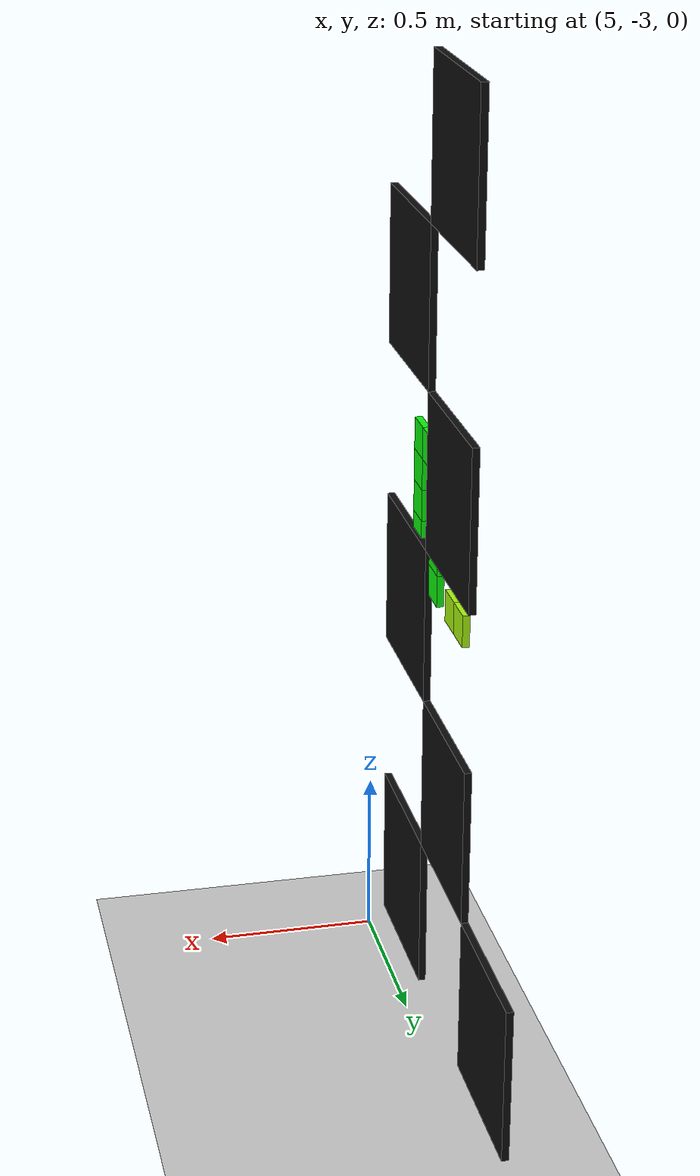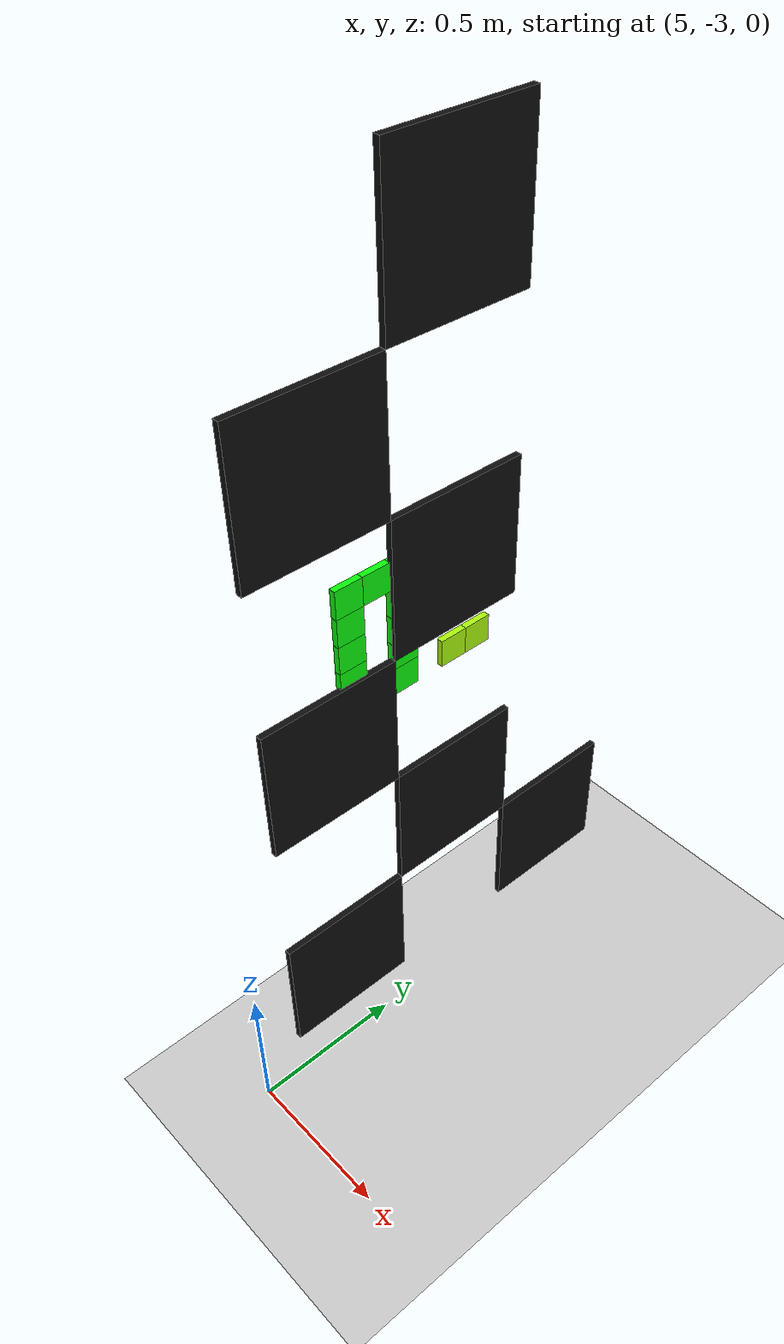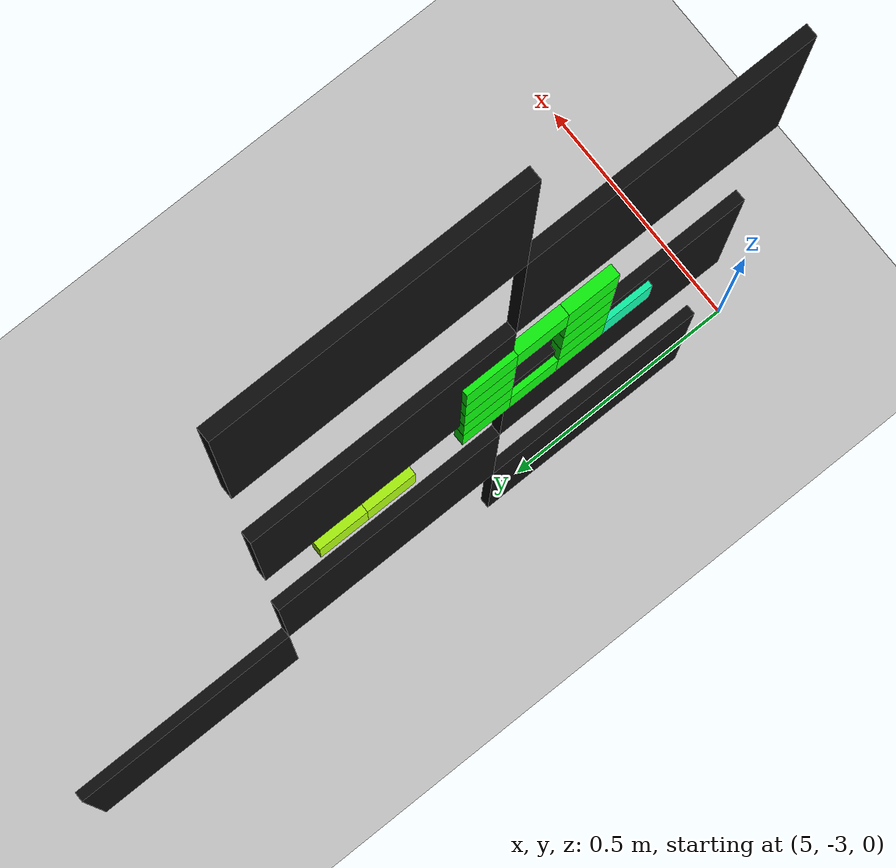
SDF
<sdf version="1.6">
 <world name="collab_workshop">
  <include><uri>model://ground_plane</uri></include>
  <include><uri>model://sun</uri></include>
  <model name="east_a_tile_0_3">
   <pose>4.98 -2.625 0.3749999999999999 0 0 0.0</pose>
   <static>true</static>
   <link name="link">
    <visual name="visual">
     <geometry><box><size>0.02 0.45 0.45</size></box></geometry>
     <material><ambient>0.05 0.05 0.05 1</ambient><diffuse>0.05 0.05 0.05 1</diffuse></material>
    </visual>
   </link>
  </model>
  <model name="east_a_tile_0_5">
   <pose>4.98 -1.725 0.3749999999999999 0 0 0.0</pose>
   <static>true</static>
   <link name="link">
    <visual name="visual">
     <geometry><box><size>0.02 0.45 0.45</size></box></geometry>
     <material><ambient>0.05 0.05 0.05 1</ambient><diffuse>0.05 0.05 0.05 1</diffuse></material>
    </visual>
   </link>
  </model>
  <model name="east_a_tile_1_4">
   <pose>4.98 -2.1750000000000003 0.8249999999999998 0 0 0.0</pose>
   <static>true</static>
   <link name="link">
    <visual name="visual">
     <geometry><box><size>0.02 0.45 0.45</size></box></geometry>
     <material><ambient>0.05 0.05 0.05 1</ambient><diffuse>0.05 0.05 0.05 1</diffuse></material>
    </visual>
   </link>
  </model>
  <model name="east_a_tile_2_3">
   <pose>4.98 -2.625 1.275 0 0 0.0</pose>
   <static>true</static>
   <link name="link">
    <visual name="visual">
     <geometry><box><size>0.02 0.45 0.45</size></box></geometry>
     <material><ambient>0.05 0.05 0.05 1</ambient><diffuse>0.05 0.05 0.05 1</diffuse></material>
    </visual>
   </link>
  </model>
  <model name="east_a_tile_3_4">
   <pose>4.98 -2.1750000000000003 1.725 0 0 0.0</pose>
   <static>true</static>
   <link name="link">
    <visual name="visual">
     <geometry><box><size>0.02 0.45 0.45</size></box></geometry>
     <material><ambient>0.05 0.05 0.05 1</ambient><diffuse>0.05 0.05 0.05 1</diffuse></material>
    </visual>
   </link>
  </model>
  <model name="east_a_tile_4_3">
   <pose>4.98 -2.625 2.175 0 0 0.0</pose>
   <static>true</static>
   <link name="link">
    <visual name="visual">
     <geometry><box><size>0.02 0.45 0.45</size></box></geometry>
     <material><ambient>0.05 0.05 0.05 1</ambient><diffuse>0.05 0.05 0.05 1</diffuse></material>
    </visual>
   </link>
  </model>
  <model name="east_a_tile_5_4">
   <pose>4.98 -2.1750000000000003 2.625 0 0 0.0</pose>
   <static>true</static>
   <link name="link">
    <visual name="visual">
     <geometry><box><size>0.02 0.45 0.45</size></box></geometry>
     <material><ambient>0.05 0.05 0.05 1</ambient><diffuse>0.05 0.05 0.05 1</diffuse></material>
    </visual>
   </link>
  </model>
  <model name="lab_letter_2_4_0">
   <pose>4.97 -2.0850000000000004 1.415 0 0 0.0</pose>
   <static>true</static>
   <link name="link">
    <visual name="visual">
     <geometry><box><size>0.02 0.09 0.09</size></box></geometry>
     <material><ambient>0.67 0.98 0.049 1</ambient><diffuse>0.67 0.98 0.049 1</diffuse></material>
    </visual>
   </link>
  </model>
  <model name="lab_letter_2_4_1">
   <pose>4.97 -2.1750000000000003 1.415 0 0 0.0</pose>
   <static>true</static>
   <link name="link">
    <visual name="visual">
     <geometry><box><size>0.02 0.09 0.09</size></box></geometry>
     <material><ambient>0.67 0.98 0.049 1</ambient><diffuse>0.67 0.98 0.049 1</diffuse></material>
    </visual>
   </link>
  </model>
  <model name="lab_letter_3_0_0">
   <pose>4.97 -2.3550000000000004 1.775 0 0 0.0</pose>
   <static>true</static>
   <link name="link">
    <visual name="visual">
     <geometry><box><size>0.02 0.09 0.09</size></box></geometry>
     <material><ambient>0.049 0.98 0.049 1</ambient><diffuse>0.049 0.98 0.049 1</diffuse></material>
    </visual>
   </link>
  </model>
  <model name="lab_letter_3_0_1">
   <pose>4.97 -2.4450000000000003 1.775 0 0 0.0</pose>
   <static>true</static>
   <link name="link">
    <visual name="visual">
     <geometry><box><size>0.02 0.09 0.09</size></box></geometry>
     <material><ambient>0.049 0.98 0.049 1</ambient><diffuse>0.049 0.98 0.049 1</diffuse></material>
    </visual>
   </link>
  </model>
  <model name="lab_letter_3_0_2">
   <pose>4.97 -2.535 1.775 0 0 0.0</pose>
   <static>true</static>
   <link name="link">
    <visual name="visual">
     <geometry><box><size>0.02 0.09 0.09</size></box></geometry>
     <material><ambient>0.049 0.98 0.049 1</ambient><diffuse>0.049 0.98 0.049 1</diffuse></material>
    </visual>
   </link>
  </model>
  <model name="lab_letter_3_1_0">
   <pose>4.97 -2.3550000000000004 1.685 0 0 0.0</pose>
   <static>true</static>
   <link name="link">
    <visual name="visual">
     <geometry><box><size>0.02 0.09 0.09</size></box></geometry>
     <material><ambient>0.049 0.98 0.049 1</ambient><diffuse>0.049 0.98 0.049 1</diffuse></material>
    </visual>
   </link>
  </model>
  <model name="lab_letter_3_1_2">
   <pose>4.97 -2.535 1.685 0 0 0.0</pose>
   <static>true</static>
   <link name="link">
    <visual name="visual">
     <geometry><box><size>0.02 0.09 0.09</size></box></geometry>
     <material><ambient>0.049 0.98 0.049 1</ambient><diffuse>0.049 0.98 0.049 1</diffuse></material>
    </visual>
   </link>
  </model>
  <model name="lab_letter_3_2_0">
   <pose>4.97 -2.3550000000000004 1.595 0 0 0.0</pose>
   <static>true</static>
   <link name="link">
    <visual name="visual">
     <geometry><box><size>0.02 0.09 0.09</size></box></geometry>
     <material><ambient>0.049 0.98 0.049 1</ambient><diffuse>0.049 0.98 0.049 1</diffuse></material>
    </visual>
   </link>
  </model>
  <model name="lab_letter_3_2_2">
   <pose>4.97 -2.535 1.595 0 0 0.0</pose>
   <static>true</static>
   <link name="link">
    <visual name="visual">
     <geometry><box><size>0.02 0.09 0.09</size></box></geometry>
     <material><ambient>0.049 0.98 0.049 1</ambient><diffuse>0.049 0.98 0.049 1</diffuse></material>
    </visual>
   </link>
  </model>
  <model name="lab_letter_3_3_0">
   <pose>4.97 -2.3550000000000004 1.505 0 0 0.0</pose>
   <static>true</static>
   <link name="link">
    <visual name="visual">
     <geometry><box><size>0.02 0.09 0.09</size></box></geometry>
     <material><ambient>0.049 0.98 0.049 1</ambient><diffuse>0.049 0.98 0.049 1</diffuse></material>
    </visual>
   </link>
  </model>
  <model name="lab_letter_3_3_2">
   <pose>4.97 -2.535 1.505 0 0 0.0</pose>
   <static>true</static>
   <link name="link">
    <visual name="visual">
     <geometry><box><size>0.02 0.09 0.09</size></box></geometry>
     <material><ambient>0.049 0.98 0.049 1</ambient><diffuse>0.049 0.98 0.049 1</diffuse></material>
    </visual>
   </link>
  </model>
  <model name="lab_letter_3_4_0">
   <pose>4.97 -2.3550000000000004 1.415 0 0 0.0</pose>
   <static>true</static>
   <link name="link">
    <visual name="visual">
     <geometry><box><size>0.02 0.09 0.09</size></box></geometry>
     <material><ambient>0.049 0.98 0.049 1</ambient><diffuse>0.049 0.98 0.049 1</diffuse></material>
    </visual>
   </link>
  </model>
  <model name="lab_letter_3_4_1">
   <pose>4.97 -2.4450000000000003 1.415 0 0 0.0</pose>
   <static>true</static>
   <link name="link">
    <visual name="visual">
     <geometry><box><size>0.02 0.09 0.09</size></box></geometry>
     <material><ambient>0.049 0.98 0.049 1</ambient><diffuse>0.049 0.98 0.049 1</diffuse></material>
    </visual>
   </link>
  </model>
  <model name="lab_letter_3_4_2">
   <pose>4.97 -2.535 1.415 0 0 0.0</pose>
   <static>true</static>
   <link name="link">
    <visual name="visual">
     <geometry><box><size>0.02 0.09 0.09</size></box></geometry>
     <material><ambient>0.049 0.98 0.049 1</ambient><diffuse>0.049 0.98 0.049 1</diffuse></material>
    </visual>
   </link>
  </model>
  <model name="lab_letter_4_4_0">
   <pose>4.97 -2.625 1.415 0 0 0.0</pose>
   <static>true</static>
   <link name="link">
    <visual name="visual">
     <geometry><box><size>0.02 0.09 0.09</size></box></geometry>
     <material><ambient>0.049 0.98 0.67 1</ambient><diffuse>0.049 0.98 0.67 1</diffuse></material>
    </visual>
   </link>
  </model>
 </world>
</sdf>
